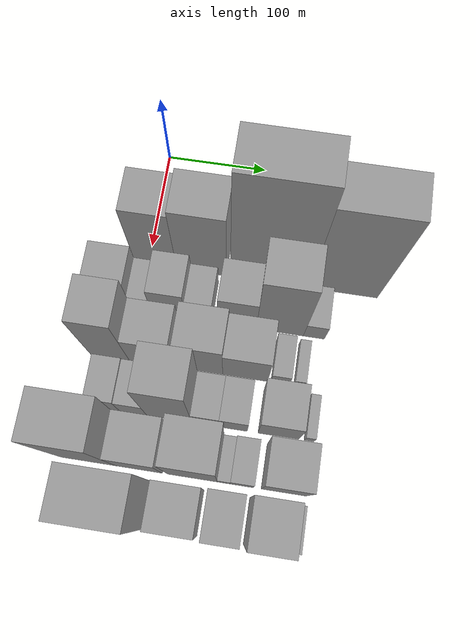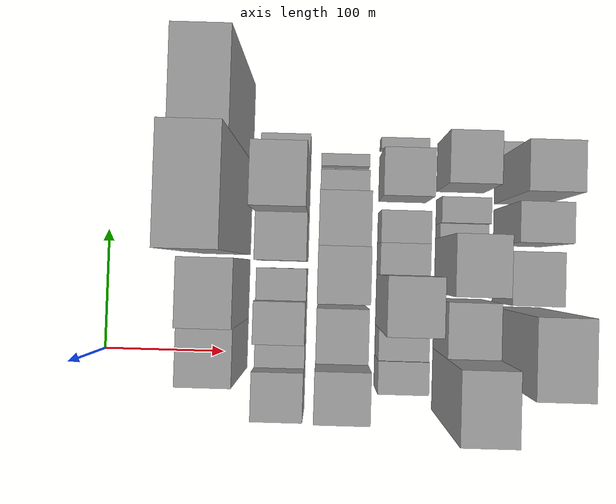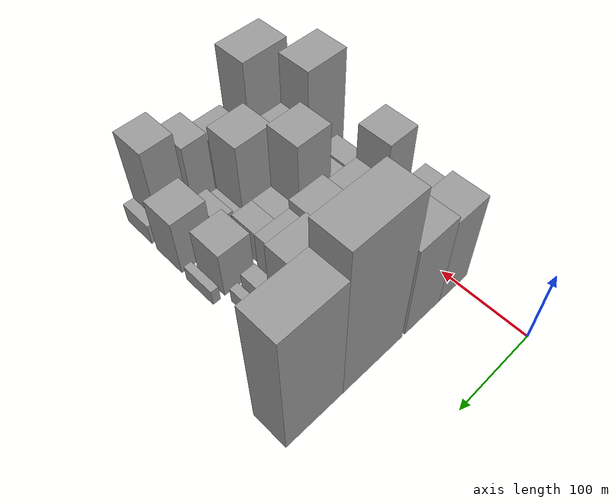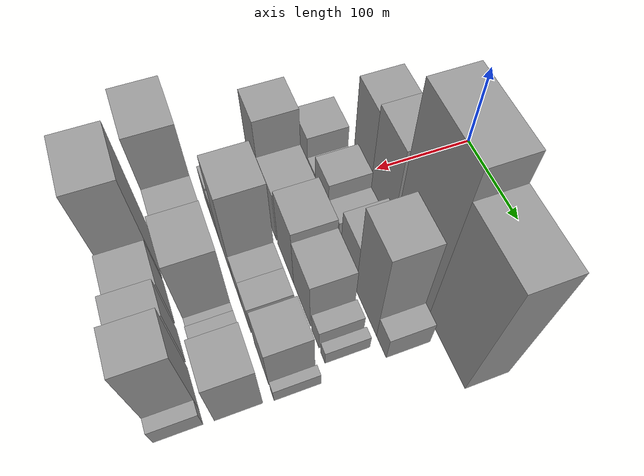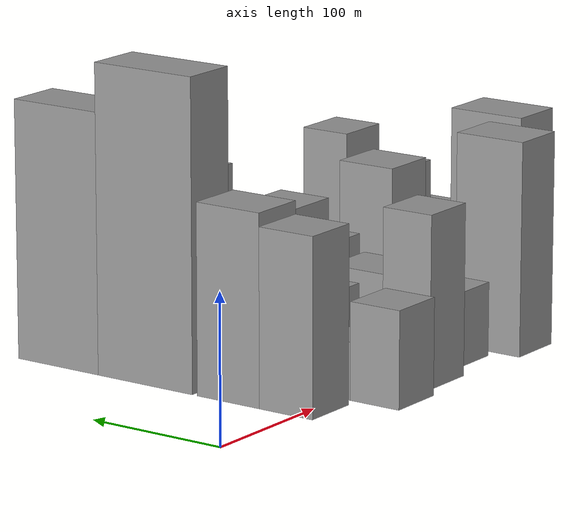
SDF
<sdf version="1.6">
 <world name="default">
  <model name="building_20">
   <static>1</static>
   <pose>100.0000 7.6626 0 0.000000 0.000000 0.000000</pose>
   <link name="link">
    <pose>0 0 60.00 0 0 0</pose>
    <collision name="collision"><geometry><box><size>40.0000 41.7325 120.0000</size></box></geometry></collision>
    <visual name="visual">
     <cast_shadows>0</cast_shadows>
     <geometry><box><size>40.0000 41.7325 120.0000</size></box></geometry>
     <material>
      <script>
       <uri>model://grey_wall/materials/scripts</uri>
       <uri>model://grey_wall/materials/textures</uri>
       <name>vrc/grey_wall</name>
      </script>
     </material>
    </visual>
   </link>
  </model>
  <model name="building_21">
   <static>1</static>
   <pose>100.0000 53.1898 0 0.000000 0.000000 0.000000</pose>
   <link name="link">
    <pose>0 0 64.50 0 0 0</pose>
    <collision name="collision"><geometry><box><size>40.0000 49.3220 129.0000</size></box></geometry></collision>
    <visual name="visual">
     <cast_shadows>0</cast_shadows>
     <geometry><box><size>40.0000 49.3220 129.0000</size></box></geometry>
     <material>
      <script>
       <uri>model://grey_wall/materials/scripts</uri>
       <uri>model://grey_wall/materials/textures</uri>
       <name>vrc/grey_wall</name>
      </script>
     </material>
    </visual>
   </link>
  </model>
  <model name="building_22">
   <static>1</static>
   <pose>100.0000 120.4586 0 0.000000 0.000000 0.000000</pose>
   <link name="link">
    <pose>0 0 105.00 0 0 0</pose>
    <collision name="collision"><geometry><box><size>40.0000 77.2155 210.0000</size></box></geometry></collision>
    <visual name="visual">
     <cast_shadows>0</cast_shadows>
     <geometry><box><size>40.0000 77.2155 210.0000</size></box></geometry>
     <material>
      <script>
       <uri>model://grey_wall/materials/scripts</uri>
       <uri>model://grey_wall/materials/textures</uri>
       <name>vrc/grey_wall</name>
      </script>
     </material>
    </visual>
   </link>
  </model>
  <model name="building_23">
   <static>1</static>
   <pose>100.0000 192.7061 0 0.000000 0.000000 0.000000</pose>
   <link name="link">
    <pose>0 0 88.50 0 0 0</pose>
    <collision name="collision"><geometry><box><size>40.0000 67.2794 177.0000</size></box></geometry></collision>
    <visual name="visual">
     <cast_shadows>0</cast_shadows>
     <geometry><box><size>40.0000 67.2794 177.0000</size></box></geometry>
     <material>
      <script>
       <uri>model://grey_wall/materials/scripts</uri>
       <uri>model://grey_wall/materials/textures</uri>
       <name>vrc/grey_wall</name>
      </script>
     </material>
    </visual>
   </link>
  </model>
  <model name="building_69">
   <static>1</static>
   <pose>149.0000 -27.0081 0 0.000000 0.000000 0.000000</pose>
   <link name="link">
    <pose>0 0 33.00 0 0 0</pose>
    <collision name="collision"><geometry><box><size>40.0000 37.9556 66.0000</size></box></geometry></collision>
    <visual name="visual">
     <cast_shadows>0</cast_shadows>
     <geometry><box><size>40.0000 37.9556 66.0000</size></box></geometry>
     <material>
      <script>
       <uri>model://grey_wall/materials/scripts</uri>
       <uri>model://grey_wall/materials/textures</uri>
       <name>vrc/grey_wall</name>
      </script>
     </material>
    </visual>
   </link>
  </model>
  <model name="building_70">
   <static>1</static>
   <pose>149.0000 2.3802 0 0.000000 0.000000 0.000000</pose>
   <link name="link">
    <pose>0 0 19.50 0 0 0</pose>
    <collision name="collision"><geometry><box><size>40.0000 20.8209 39.0000</size></box></geometry></collision>
    <visual name="visual">
     <cast_shadows>0</cast_shadows>
     <geometry><box><size>40.0000 20.8209 39.0000</size></box></geometry>
     <material>
      <script>
       <uri>model://grey_wall/materials/scripts</uri>
       <uri>model://grey_wall/materials/textures</uri>
       <name>vrc/grey_wall</name>
      </script>
     </material>
    </visual>
   </link>
  </model>
  <model name="building_71">
   <static>1</static>
   <pose>149.0000 29.3461 0 0.000000 0.000000 0.000000</pose>
   <link name="link">
    <pose>0 0 33.00 0 0 0</pose>
    <collision name="collision"><geometry><box><size>40.0000 33.1109 66.0000</size></box></geometry></collision>
    <visual name="visual">
     <cast_shadows>0</cast_shadows>
     <geometry><box><size>40.0000 33.1109 66.0000</size></box></geometry>
     <material>
      <script>
       <uri>model://grey_wall/materials/scripts</uri>
       <uri>model://grey_wall/materials/textures</uri>
       <name>vrc/grey_wall</name>
      </script>
     </material>
    </visual>
   </link>
  </model>
  <model name="building_72">
   <static>1</static>
   <pose>149.0000 58.6786 0 0.000000 0.000000 0.000000</pose>
   <link name="link">
    <pose>0 0 22.50 0 0 0</pose>
    <collision name="collision"><geometry><box><size>40.0000 25.5540 45.0000</size></box></geometry></collision>
    <visual name="visual">
     <cast_shadows>0</cast_shadows>
     <geometry><box><size>40.0000 25.5540 45.0000</size></box></geometry>
     <material>
      <script>
       <uri>model://grey_wall/materials/scripts</uri>
       <uri>model://grey_wall/materials/textures</uri>
       <name>vrc/grey_wall</name>
      </script>
     </material>
    </visual>
   </link>
  </model>
  <model name="building_73">
   <static>1</static>
   <pose>149.0000 95.9520 0 0.000000 0.000000 0.000000</pose>
   <link name="link">
    <pose>0 0 36.00 0 0 0</pose>
    <collision name="collision"><geometry><box><size>40.0000 36.9929 72.0000</size></box></geometry></collision>
    <visual name="visual">
     <cast_shadows>0</cast_shadows>
     <geometry><box><size>40.0000 36.9929 72.0000</size></box></geometry>
     <material>
      <script>
       <uri>model://grey_wall/materials/scripts</uri>
       <uri>model://grey_wall/materials/textures</uri>
       <name>vrc/grey_wall</name>
      </script>
     </material>
    </visual>
   </link>
  </model>
  <model name="building_74">
   <static>1</static>
   <pose>149.0000 137.1826 0 0.000000 0.000000 0.000000</pose>
   <link name="link">
    <pose>0 0 66.00 0 0 0</pose>
    <collision name="collision"><geometry><box><size>40.0000 45.4683 132.0000</size></box></geometry></collision>
    <visual name="visual">
     <cast_shadows>0</cast_shadows>
     <geometry><box><size>40.0000 45.4683 132.0000</size></box></geometry>
     <material>
      <script>
       <uri>model://grey_wall/materials/scripts</uri>
       <uri>model://grey_wall/materials/textures</uri>
       <name>vrc/grey_wall</name>
      </script>
     </material>
    </visual>
   </link>
  </model>
  <model name="building_75">
   <static>1</static>
   <pose>149.0000 170.0718 0 0.000000 0.000000 0.000000</pose>
   <link name="link">
    <pose>0 0 18.00 0 0 0</pose>
    <collision name="collision"><geometry><box><size>40.0000 20.3101 36.0000</size></box></geometry></collision>
    <visual name="visual">
     <cast_shadows>0</cast_shadows>
     <geometry><box><size>40.0000 20.3101 36.0000</size></box></geometry>
     <material>
      <script>
       <uri>model://grey_wall/materials/scripts</uri>
       <uri>model://grey_wall/materials/textures</uri>
       <name>vrc/grey_wall</name>
      </script>
     </material>
    </visual>
   </link>
  </model>
  <model name="building_121">
   <static>1</static>
   <pose>198.0000 -18.5015 0 0.000000 0.000000 0.000000</pose>
   <link name="link">
    <pose>0 0 58.50 0 0 0</pose>
    <collision name="collision"><geometry><box><size>40.0000 37.3199 117.0000</size></box></geometry></collision>
    <visual name="visual">
     <cast_shadows>0</cast_shadows>
     <geometry><box><size>40.0000 37.3199 117.0000</size></box></geometry>
     <material>
      <script>
       <uri>model://grey_wall/materials/scripts</uri>
       <uri>model://grey_wall/materials/textures</uri>
       <name>vrc/grey_wall</name>
      </script>
     </material>
    </visual>
   </link>
  </model>
  <model name="building_122">
   <static>1</static>
   <pose>198.0000 21.1264 0 0.000000 0.000000 0.000000</pose>
   <link name="link">
    <pose>0 0 36.00 0 0 0</pose>
    <collision name="collision"><geometry><box><size>40.0000 41.9359 72.0000</size></box></geometry></collision>
    <visual name="visual">
     <cast_shadows>0</cast_shadows>
     <geometry><box><size>40.0000 41.9359 72.0000</size></box></geometry>
     <material>
      <script>
       <uri>model://grey_wall/materials/scripts</uri>
       <uri>model://grey_wall/materials/textures</uri>
       <name>vrc/grey_wall</name>
      </script>
     </material>
    </visual>
   </link>
  </model>
  <model name="building_123">
   <static>1</static>
   <pose>198.0000 67.8071 0 0.000000 0.000000 0.000000</pose>
   <link name="link">
    <pose>0 0 42.00 0 0 0</pose>
    <collision name="collision"><geometry><box><size>40.0000 43.4254 84.0000</size></box></geometry></collision>
    <visual name="visual">
     <cast_shadows>0</cast_shadows>
     <geometry><box><size>40.0000 43.4254 84.0000</size></box></geometry>
     <material>
      <script>
       <uri>model://grey_wall/materials/scripts</uri>
       <uri>model://grey_wall/materials/textures</uri>
       <name>vrc/grey_wall</name>
      </script>
     </material>
    </visual>
   </link>
  </model>
  <model name="building_124">
   <static>1</static>
   <pose>198.0000 110.8827 0 0.000000 0.000000 0.000000</pose>
   <link name="link">
    <pose>0 0 36.00 0 0 0</pose>
    <collision name="collision"><geometry><box><size>40.0000 42.7259 72.0000</size></box></geometry></collision>
    <visual name="visual">
     <cast_shadows>0</cast_shadows>
     <geometry><box><size>40.0000 42.7259 72.0000</size></box></geometry>
     <material>
      <script>
       <uri>model://grey_wall/materials/scripts</uri>
       <uri>model://grey_wall/materials/textures</uri>
       <name>vrc/grey_wall</name>
      </script>
     </material>
    </visual>
   </link>
  </model>
  <model name="building_125">
   <static>1</static>
   <pose>198.0000 144.0480 0 0.000000 0.000000 0.000000</pose>
   <link name="link">
    <pose>0 0 15.00 0 0 0</pose>
    <collision name="collision"><geometry><box><size>40.0000 17.6046 30.0000</size></box></geometry></collision>
    <visual name="visual">
     <cast_shadows>0</cast_shadows>
     <geometry><box><size>40.0000 17.6046 30.0000</size></box></geometry>
     <material>
      <script>
       <uri>model://grey_wall/materials/scripts</uri>
       <uri>model://grey_wall/materials/textures</uri>
       <name>vrc/grey_wall</name>
      </script>
     </material>
    </visual>
   </link>
  </model>
  <model name="building_126">
   <static>1</static>
   <pose>198.0000 161.9585 0 0.000000 0.000000 0.000000</pose>
   <link name="link">
    <pose>0 0 10.50 0 0 0</pose>
    <collision name="collision"><geometry><box><size>40.0000 10.2165 21.0000</size></box></geometry></collision>
    <visual name="visual">
     <cast_shadows>0</cast_shadows>
     <geometry><box><size>40.0000 10.2165 21.0000</size></box></geometry>
     <material>
      <script>
       <uri>model://grey_wall/materials/scripts</uri>
       <uri>model://grey_wall/materials/textures</uri>
       <name>vrc/grey_wall</name>
      </script>
     </material>
    </visual>
   </link>
  </model>
  <model name="building_165">
   <static>1</static>
   <pose>247.0000 -11.7352 0 0.000000 0.000000 0.000000</pose>
   <link name="link">
    <pose>0 0 25.50 0 0 0</pose>
    <collision name="collision"><geometry><box><size>40.0000 25.8268 51.0000</size></box></geometry></collision>
    <visual name="visual">
     <cast_shadows>0</cast_shadows>
     <geometry><box><size>40.0000 25.8268 51.0000</size></box></geometry>
     <material>
      <script>
       <uri>model://grey_wall/materials/scripts</uri>
       <uri>model://grey_wall/materials/textures</uri>
       <name>vrc/grey_wall</name>
      </script>
     </material>
    </visual>
   </link>
  </model>
  <model name="building_166">
   <static>1</static>
   <pose>247.0000 13.8283 0 0.000000 0.000000 0.000000</pose>
   <link name="link">
    <pose>0 0 24.00 0 0 0</pose>
    <collision name="collision"><geometry><box><size>40.0000 25.3001 48.0000</size></box></geometry></collision>
    <visual name="visual">
     <cast_shadows>0</cast_shadows>
     <geometry><box><size>40.0000 25.3001 48.0000</size></box></geometry>
     <material>
      <script>
       <uri>model://grey_wall/materials/scripts</uri>
       <uri>model://grey_wall/materials/textures</uri>
       <name>vrc/grey_wall</name>
      </script>
     </material>
    </visual>
   </link>
  </model>
  <model name="building_167">
   <static>1</static>
   <pose>247.0000 47.5861 0 0.000000 0.000000 0.000000</pose>
   <link name="link">
    <pose>0 0 64.50 0 0 0</pose>
    <collision name="collision"><geometry><box><size>40.0000 42.2155 129.0000</size></box></geometry></collision>
    <visual name="visual">
     <cast_shadows>0</cast_shadows>
     <geometry><box><size>40.0000 42.2155 129.0000</size></box></geometry>
     <material>
      <script>
       <uri>model://grey_wall/materials/scripts</uri>
       <uri>model://grey_wall/materials/textures</uri>
       <name>vrc/grey_wall</name>
      </script>
     </material>
    </visual>
   </link>
  </model>
  <model name="building_168">
   <static>1</static>
   <pose>247.0000 81.4140 0 0.000000 0.000000 0.000000</pose>
   <link name="link">
    <pose>0 0 22.50 0 0 0</pose>
    <collision name="collision"><geometry><box><size>40.0000 25.4403 45.0000</size></box></geometry></collision>
    <visual name="visual">
     <cast_shadows>0</cast_shadows>
     <geometry><box><size>40.0000 25.4403 45.0000</size></box></geometry>
     <material>
      <script>
       <uri>model://grey_wall/materials/scripts</uri>
       <uri>model://grey_wall/materials/textures</uri>
       <name>vrc/grey_wall</name>
      </script>
     </material>
    </visual>
   </link>
  </model>
  <model name="building_169">
   <static>1</static>
   <pose>247.0000 107.0900 0 0.000000 0.000000 0.000000</pose>
   <link name="link">
    <pose>0 0 22.50 0 0 0</pose>
    <collision name="collision"><geometry><box><size>40.0000 25.9116 45.0000</size></box></geometry></collision>
    <visual name="visual">
     <cast_shadows>0</cast_shadows>
     <geometry><box><size>40.0000 25.9116 45.0000</size></box></geometry>
     <material>
      <script>
       <uri>model://grey_wall/materials/scripts</uri>
       <uri>model://grey_wall/materials/textures</uri>
       <name>vrc/grey_wall</name>
      </script>
     </material>
    </visual>
   </link>
  </model>
  <model name="building_170">
   <static>1</static>
   <pose>247.0000 148.8648 0 0.000000 0.000000 0.000000</pose>
   <link name="link">
    <pose>0 0 31.50 0 0 0</pose>
    <collision name="collision"><geometry><box><size>40.0000 37.6379 63.0000</size></box></geometry></collision>
    <visual name="visual">
     <cast_shadows>0</cast_shadows>
     <geometry><box><size>40.0000 37.6379 63.0000</size></box></geometry>
     <material>
      <script>
       <uri>model://grey_wall/materials/scripts</uri>
       <uri>model://grey_wall/materials/textures</uri>
       <name>vrc/grey_wall</name>
      </script>
     </material>
    </visual>
   </link>
  </model>
  <model name="building_171">
   <static>1</static>
   <pose>247.0000 177.2192 0 0.000000 0.000000 0.000000</pose>
   <link name="link">
    <pose>0 0 10.50 0 0 0</pose>
    <collision name="collision"><geometry><box><size>40.0000 9.0709 21.0000</size></box></geometry></collision>
    <visual name="visual">
     <cast_shadows>0</cast_shadows>
     <geometry><box><size>40.0000 9.0709 21.0000</size></box></geometry>
     <material>
      <script>
       <uri>model://grey_wall/materials/scripts</uri>
       <uri>model://grey_wall/materials/textures</uri>
       <name>vrc/grey_wall</name>
      </script>
     </material>
    </visual>
   </link>
  </model>
  <model name="building_213">
   <static>1</static>
   <pose>296.0000 -17.9911 0 0.000000 0.000000 0.000000</pose>
   <link name="link">
    <pose>0 0 73.50 0 0 0</pose>
    <collision name="collision"><geometry><box><size>40.0000 51.4542 147.0000</size></box></geometry></collision>
    <visual name="visual">
     <cast_shadows>0</cast_shadows>
     <geometry><box><size>40.0000 51.4542 147.0000</size></box></geometry>
     <material>
      <script>
       <uri>model://grey_wall/materials/scripts</uri>
       <uri>model://grey_wall/materials/textures</uri>
       <name>vrc/grey_wall</name>
      </script>
     </material>
    </visual>
   </link>
  </model>
  <model name="building_214">
   <static>1</static>
   <pose>296.0000 28.8180 0 0.000000 0.000000 0.000000</pose>
   <link name="link">
    <pose>0 0 42.00 0 0 0</pose>
    <collision name="collision"><geometry><box><size>40.0000 42.1639 84.0000</size></box></geometry></collision>
    <visual name="visual">
     <cast_shadows>0</cast_shadows>
     <geometry><box><size>40.0000 42.1639 84.0000</size></box></geometry>
     <material>
      <script>
       <uri>model://grey_wall/materials/scripts</uri>
       <uri>model://grey_wall/materials/textures</uri>
       <name>vrc/grey_wall</name>
      </script>
     </material>
    </visual>
   </link>
  </model>
  <model name="building_215">
   <static>1</static>
   <pose>296.0000 77.4626 0 0.000000 0.000000 0.000000</pose>
   <link name="link">
    <pose>0 0 57.00 0 0 0</pose>
    <collision name="collision"><geometry><box><size>40.0000 45.1255 114.0000</size></box></geometry></collision>
    <visual name="visual">
     <cast_shadows>0</cast_shadows>
     <geometry><box><size>40.0000 45.1255 114.0000</size></box></geometry>
     <material>
      <script>
       <uri>model://grey_wall/materials/scripts</uri>
       <uri>model://grey_wall/materials/textures</uri>
       <name>vrc/grey_wall</name>
      </script>
     </material>
    </visual>
   </link>
  </model>
  <model name="building_216">
   <static>1</static>
   <pose>296.0000 105.8909 0 0.000000 0.000000 0.000000</pose>
   <link name="link">
    <pose>0 0 13.50 0 0 0</pose>
    <collision name="collision"><geometry><box><size>40.0000 11.7311 27.0000</size></box></geometry></collision>
    <visual name="visual">
     <cast_shadows>0</cast_shadows>
     <geometry><box><size>40.0000 11.7311 27.0000</size></box></geometry>
     <material>
      <script>
       <uri>model://grey_wall/materials/scripts</uri>
       <uri>model://grey_wall/materials/textures</uri>
       <name>vrc/grey_wall</name>
      </script>
     </material>
    </visual>
   </link>
  </model>
  <model name="building_217">
   <static>1</static>
   <pose>296.0000 122.2919 0 0.000000 0.000000 0.000000</pose>
   <link name="link">
    <pose>0 0 18.00 0 0 0</pose>
    <collision name="collision"><geometry><box><size>40.0000 21.0708 36.0000</size></box></geometry></collision>
    <visual name="visual">
     <cast_shadows>0</cast_shadows>
     <geometry><box><size>40.0000 21.0708 36.0000</size></box></geometry>
     <material>
      <script>
       <uri>model://grey_wall/materials/scripts</uri>
       <uri>model://grey_wall/materials/textures</uri>
       <name>vrc/grey_wall</name>
      </script>
     </material>
    </visual>
   </link>
  </model>
  <model name="building_218">
   <static>1</static>
   <pose>296.0000 160.1550 0 0.000000 0.000000 0.000000</pose>
   <link name="link">
    <pose>0 0 37.50 0 0 0</pose>
    <collision name="collision"><geometry><box><size>40.0000 40.6554 75.0000</size></box></geometry></collision>
    <visual name="visual">
     <cast_shadows>0</cast_shadows>
     <geometry><box><size>40.0000 40.6554 75.0000</size></box></geometry>
     <material>
      <script>
       <uri>model://grey_wall/materials/scripts</uri>
       <uri>model://grey_wall/materials/textures</uri>
       <name>vrc/grey_wall</name>
      </script>
     </material>
    </visual>
   </link>
  </model>
  <model name="building_257">
   <static>1</static>
   <pose>345.0000 16.3156 0 0.000000 0.000000 0.000000</pose>
   <link name="link">
    <pose>0 0 75.00 0 0 0</pose>
    <collision name="collision"><geometry><box><size>40.0000 55.8844 150.0000</size></box></geometry></collision>
    <visual name="visual">
     <cast_shadows>0</cast_shadows>
     <geometry><box><size>40.0000 55.8844 150.0000</size></box></geometry>
     <material>
      <script>
       <uri>model://grey_wall/materials/scripts</uri>
       <uri>model://grey_wall/materials/textures</uri>
       <name>vrc/grey_wall</name>
      </script>
     </material>
    </visual>
   </link>
  </model>
  <model name="building_258">
   <static>1</static>
   <pose>345.0000 68.8570 0 0.000000 0.000000 0.000000</pose>
   <link name="link">
    <pose>0 0 37.50 0 0 0</pose>
    <collision name="collision"><geometry><box><size>40.0000 41.1986 75.0000</size></box></geometry></collision>
    <visual name="visual">
     <cast_shadows>0</cast_shadows>
     <geometry><box><size>40.0000 41.1986 75.0000</size></box></geometry>
     <material>
      <script>
       <uri>model://grey_wall/materials/scripts</uri>
       <uri>model://grey_wall/materials/textures</uri>
       <name>vrc/grey_wall</name>
      </script>
     </material>
    </visual>
   </link>
  </model>
  <model name="building_259">
   <static>1</static>
   <pose>345.0000 110.6557 0 0.000000 0.000000 0.000000</pose>
   <link name="link">
    <pose>0 0 48.00 0 0 0</pose>
    <collision name="collision"><geometry><box><size>40.0000 30.3987 96.0000</size></box></geometry></collision>
    <visual name="visual">
     <cast_shadows>0</cast_shadows>
     <geometry><box><size>40.0000 30.3987 96.0000</size></box></geometry>
     <material>
      <script>
       <uri>model://grey_wall/materials/scripts</uri>
       <uri>model://grey_wall/materials/textures</uri>
       <name>vrc/grey_wall</name>
      </script>
     </material>
    </visual>
   </link>
  </model>
  <model name="building_260">
   <static>1</static>
   <pose>345.0000 149.2025 0 0.000000 0.000000 0.000000</pose>
   <link name="link">
    <pose>0 0 60.00 0 0 0</pose>
    <collision name="collision"><geometry><box><size>40.0000 36.6948 120.0000</size></box></geometry></collision>
    <visual name="visual">
     <cast_shadows>0</cast_shadows>
     <geometry><box><size>40.0000 36.6948 120.0000</size></box></geometry>
     <material>
      <script>
       <uri>model://grey_wall/materials/scripts</uri>
       <uri>model://grey_wall/materials/textures</uri>
       <name>vrc/grey_wall</name>
      </script>
     </material>
    </visual>
   </link>
  </model>
  <model name="building_261">
   <static>1</static>
   <pose>345.0000 173.7968 0 0.000000 0.000000 0.000000</pose>
   <link name="link">
    <pose>0 0 13.50 0 0 0</pose>
    <collision name="collision"><geometry><box><size>40.0000 12.4939 27.0000</size></box></geometry></collision>
    <visual name="visual">
     <cast_shadows>0</cast_shadows>
     <geometry><box><size>40.0000 12.4939 27.0000</size></box></geometry>
     <material>
      <script>
       <uri>model://grey_wall/materials/scripts</uri>
       <uri>model://grey_wall/materials/textures</uri>
       <name>vrc/grey_wall</name>
      </script>
     </material>
    </visual>
   </link>
  </model>
 </world>
</sdf>
